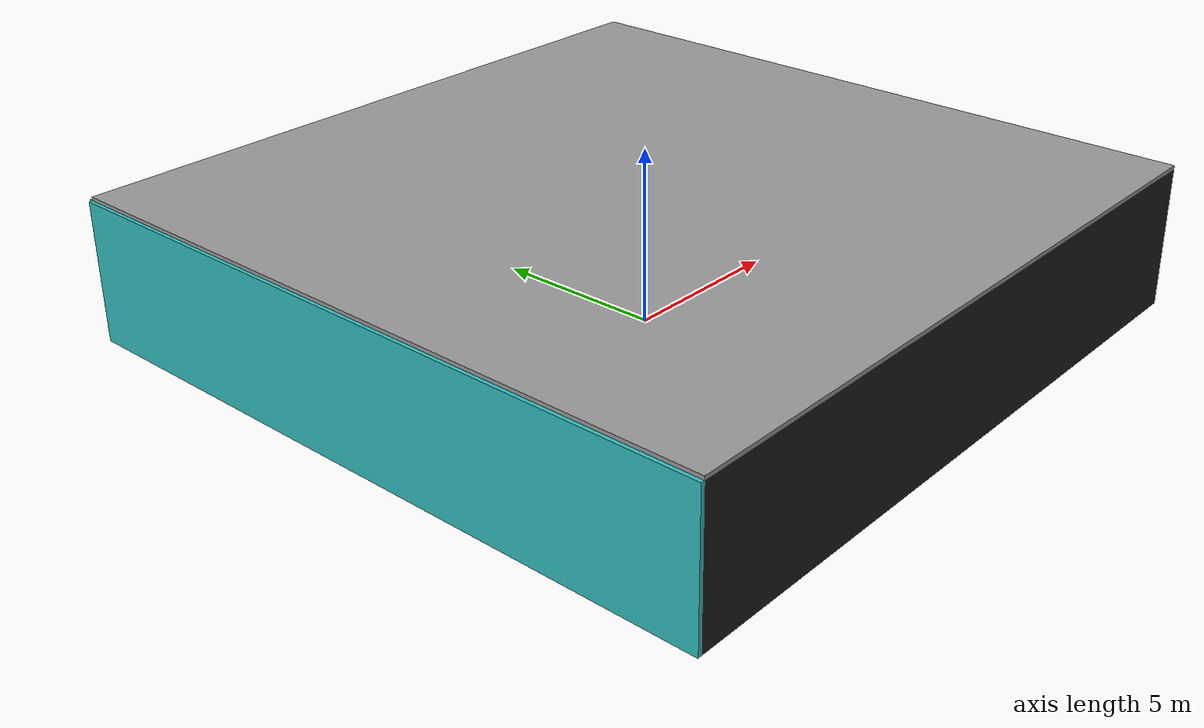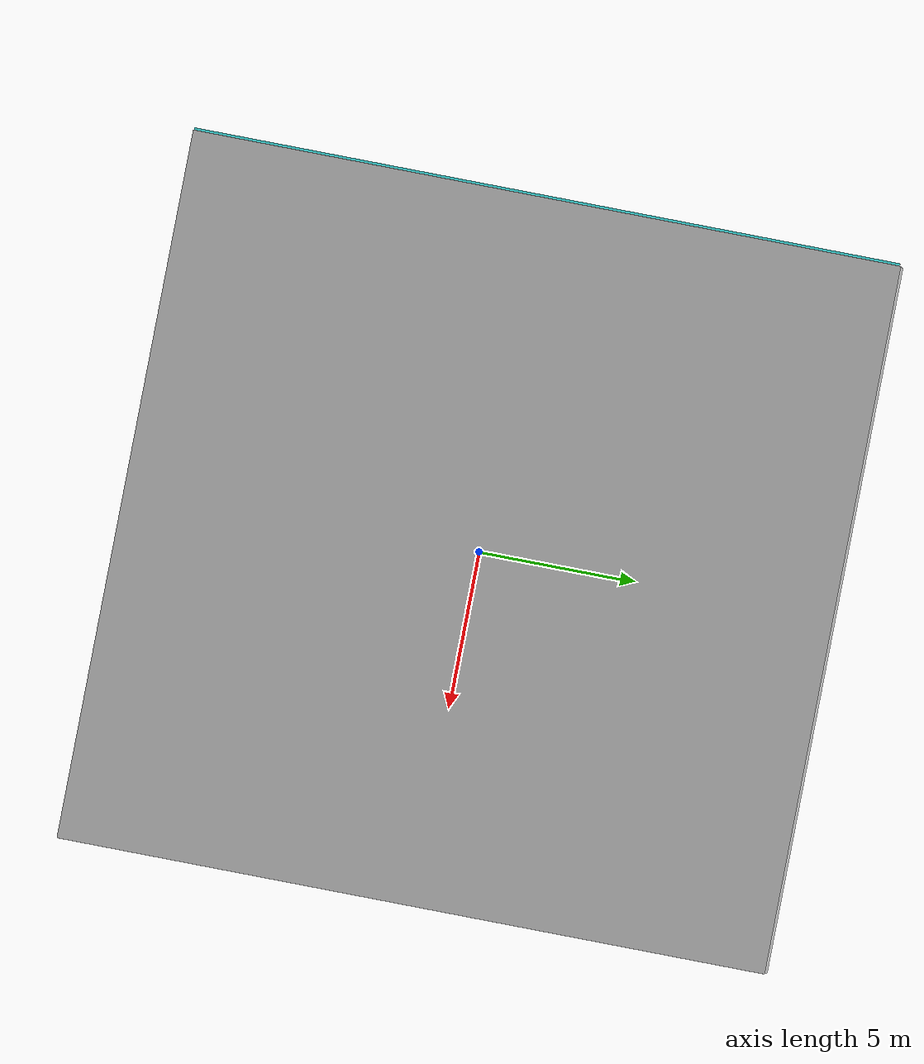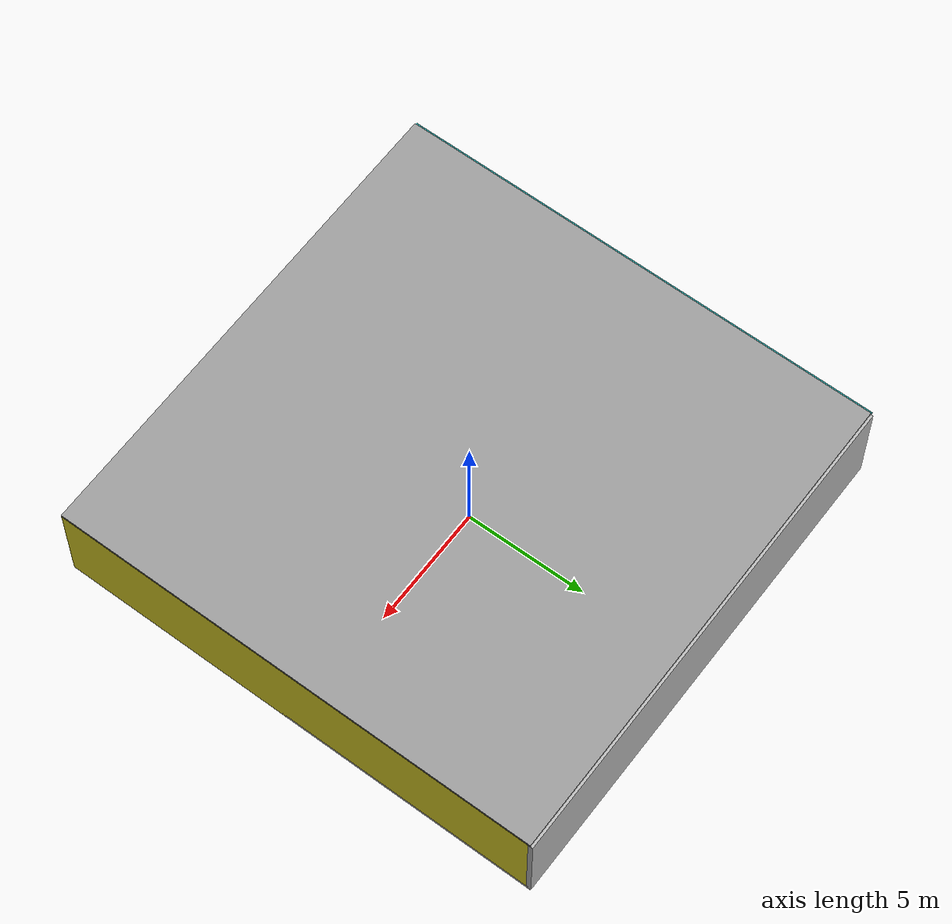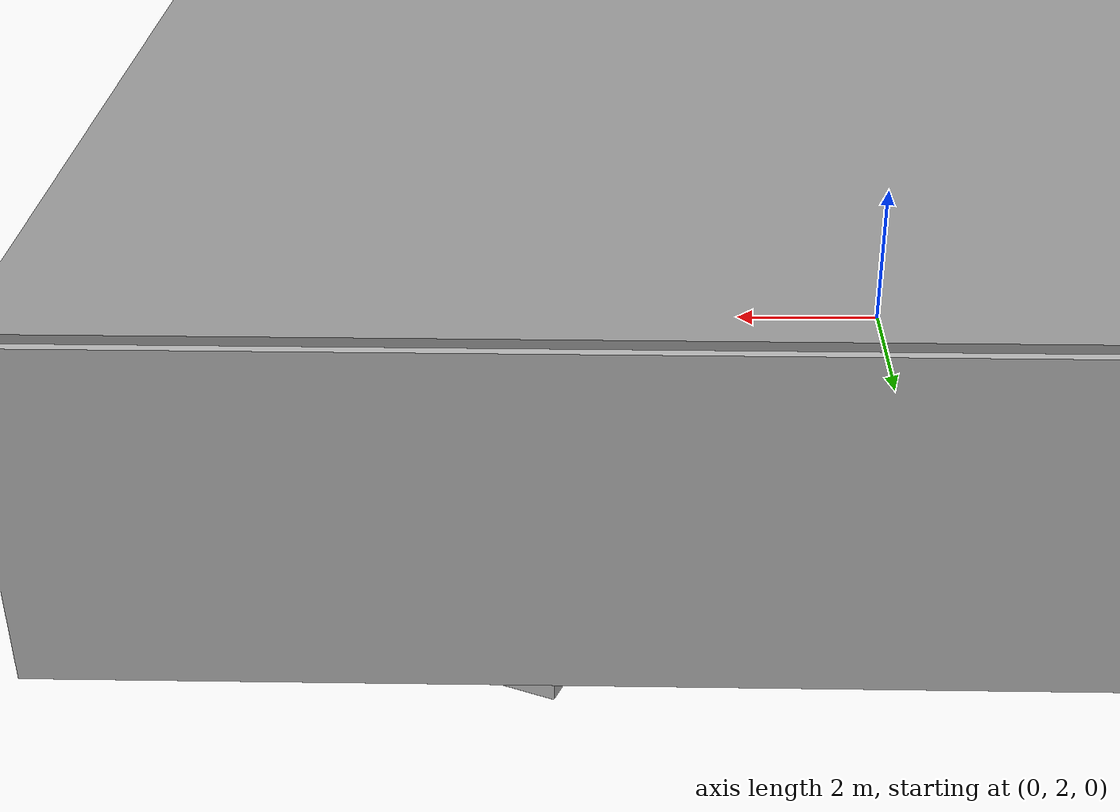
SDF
<sdf version="1.4">
 <world name="default">
  <physics type="ode">
   <max_step_size>0.001</max_step_size>
   <real_time_factor>1</real_time_factor>
   <real_time_update_rate>1000</real_time_update_rate>
   <gravity>0 0 -9.8</gravity>
  </physics>
  <scene><ambient>0.4 0.4 0.4 1</ambient><background>0.7 0.7 0.7 1</background><shadows>1</shadows></scene>
  <model name="Surrounding">
   <static>1</static>
   <link name="Ceiling">
    <collision name="Ceiling_Collision"><geometry><box><size>20 20 0.1</size></box></geometry></collision>
    <visual name="Ceiling_Visual">
     <geometry><box><size>20 20 0.1</size></box></geometry>
     <material>
      <script><uri>file://media/materials/scripts/gazebo.material</uri><name>Gazebo/Grey</name></script>
     </material>
    </visual>
    <pose>0 0 4.05 0 0 0</pose>
   </link>
   <link name="Wall_South">
    <collision name="Wall_South_Collision">
     <geometry><box><size>20 0 4</size></box></geometry>
     <pose>0 0 2 0 -0 0</pose>
    </collision>
    <visual name="Wall_South_Visual">
     <pose>0 0 2 0 -0 0</pose>
     <geometry><box><size>20 0 4</size></box></geometry>
     <material>
      <script><uri>file://media/materials/scripts/gazebo.material</uri><name>Gazebo/Black</name></script>
     </material>
    </visual>
    <velocity_decay><linear>0</linear><angular>0</angular></velocity_decay>
    <pose>0 -10 0 0 -0 0</pose>
   </link>
   <link name="Wall_East">
    <collision name="Wall_21_Collision">
     <geometry><box><size>20 0 4</size></box></geometry>
     <pose>0 0 2 0 -0 0</pose>
    </collision>
    <visual name="Wall_21_Visual">
     <pose>0 0 2 0 -0 0</pose>
     <geometry><box><size>20 0 4</size></box></geometry>
     <material>
      <script><uri>file://media/materials/scripts/gazebo.material</uri><name>Gazebo/Yellow</name></script>
     </material>
    </visual>
    <velocity_decay><linear>0</linear><angular>0</angular></velocity_decay>
    <pose>10 0 0 0 -0 1.5708</pose>
   </link>
   <link name="Wall_North">
    <collision name="Wall_22_Collision">
     <geometry><box><size>20 0.2 4</size></box></geometry>
     <pose>0 0 2 0 -0 0</pose>
    </collision>
    <visual name="Wall_22_Visual">
     <pose>0 0 2 0 -0 0</pose>
     <geometry><box><size>20 0.2 4</size></box></geometry>
     <material>
      <script><uri>file://media/materials/scripts/gazebo.material</uri><name>Gazebo/PioneerBody</name></script>
     </material>
    </visual>
    <velocity_decay><linear>0</linear><angular>0</angular></velocity_decay>
    <pose>0 10 0 0 -0 0</pose>
   </link>
   <link name="Wall_West">
    <collision name="Wall_23_Collision">
     <geometry><box><size>20 0.2 4</size></box></geometry>
     <pose>0 0 2 0 -0 0</pose>
    </collision>
    <visual name="Wall_23_Visual">
     <pose>0 0 2 0 -0 0</pose>
     <geometry><box><size>20 0.2 4</size></box></geometry>
     <material>
      <script><uri>file://media/materials/scripts/gazebo.material</uri><name>Gazebo/Turquoise</name></script>
     </material>
    </visual>
    <velocity_decay><linear>0</linear><angular>0</angular></velocity_decay>
    <pose>-10 0 0 0 0 -1.5708</pose>
   </link>
   <link name="Ground_link">
    <collision name="collision">
     <pose>0 0 .05 0 -0 0</pose>
     <geometry><box><size>20 20 0.1</size></box></geometry>
    </collision>
    <visual name="visual">
     <pose>0 0 .05 0 -0 0</pose>
     <geometry><box><size>20 20 0.1</size></box></geometry>
     <material>
      <script><uri>file://media/materials/scripts/gazebo.material</uri><name>Gazebo/Black</name></script>
     </material>
    </visual>
   </link>
   <static>1</static>
  </model>
  <spherical_coordinates>
   <surface_model>EARTH_WGS84</surface_model>
   <latitude_deg>0</latitude_deg>
   <longitude_deg>0</longitude_deg>
   <elevation>0</elevation>
   <heading_deg>0</heading_deg>
  </spherical_coordinates>
  <light name="lightball_0" type="diffuse">
   <diffuse>0.8 0.8 0.8 1</diffuse>
   <specular>0.2 0.2 0.2 1</specular>
   <attenuation>
    <range>100</range>
    <constant>0.7</constant>
    <linear>0.01</linear>
    <quadratic>0.001</quadratic>
   </attenuation>
   <direction>-0.5 0.1 -0.9</direction>
   <pose>7.96095748436 -2.80450478073 3.68573774375 0 0 0</pose>
  </light>
  <light name="lightball_1" type="diffuse">
   <diffuse>0.8 0.8 0.8 1</diffuse>
   <specular>0.2 0.2 0.2 1</specular>
   <attenuation>
    <range>100</range>
    <constant>0.7</constant>
    <linear>0.01</linear>
    <quadratic>0.001</quadratic>
   </attenuation>
   <direction>-0.5 0.1 -0.9</direction>
   <pose>9.27765777981 0.0235340100145 3.15004856988 0 0 0</pose>
  </light>
  <light name="lightball_2" type="diffuse">
   <diffuse>0.8 0.8 0.8 1</diffuse>
   <specular>0.2 0.2 0.2 1</specular>
   <attenuation>
    <range>100</range>
    <constant>0.7</constant>
    <linear>0.01</linear>
    <quadratic>0.001</quadratic>
   </attenuation>
   <direction>-0.5 0.1 -0.9</direction>
   <pose>9.99393136466 -6.06380422025 1.90683390293 0 0 0</pose>
  </light>
  <light name="lightball_3" type="diffuse">
   <diffuse>0.8 0.8 0.8 1</diffuse>
   <specular>0.2 0.2 0.2 1</specular>
   <attenuation>
    <range>100</range>
    <constant>0.7</constant>
    <linear>0.01</linear>
    <quadratic>0.001</quadratic>
   </attenuation>
   <direction>-0.5 0.1 -0.9</direction>
   <pose>5.81221960539 4.34769834963 3.86315897893 0 0 0</pose>
  </light>
  <light name="lightball_4" type="diffuse">
   <diffuse>0.8 0.8 0.8 1</diffuse>
   <specular>0.2 0.2 0.2 1</specular>
   <attenuation>
    <range>100</range>
    <constant>0.7</constant>
    <linear>0.01</linear>
    <quadratic>0.001</quadratic>
   </attenuation>
   <direction>-0.5 0.1 -0.9</direction>
   <pose>6.95925082646 1.62097667674 2.75170384994 0 0 0</pose>
  </light>
  <light name="lightball_5" type="diffuse">
   <diffuse>0.8 0.8 0.8 1</diffuse>
   <specular>0.2 0.2 0.2 1</specular>
   <attenuation>
    <range>100</range>
    <constant>0.7</constant>
    <linear>0.01</linear>
    <quadratic>0.001</quadratic>
   </attenuation>
   <direction>-0.5 0.1 -0.9</direction>
   <pose>-0.684411158459 -7.25166527712 2.07506128119 0 0 0</pose>
  </light>
  <light name="lightball_6" type="diffuse">
   <diffuse>0.8 0.8 0.8 1</diffuse>
   <specular>0.2 0.2 0.2 1</specular>
   <attenuation>
    <range>100</range>
    <constant>0.7</constant>
    <linear>0.01</linear>
    <quadratic>0.001</quadratic>
   </attenuation>
   <direction>-0.5 0.1 -0.9</direction>
   <pose>-9.86968333835 -6.2893592695 2.88714889805 0 0 0</pose>
  </light>
  <light name="lightball_7" type="diffuse">
   <diffuse>0.8 0.8 0.8 1</diffuse>
   <specular>0.2 0.2 0.2 1</specular>
   <attenuation>
    <range>100</range>
    <constant>0.7</constant>
    <linear>0.01</linear>
    <quadratic>0.001</quadratic>
   </attenuation>
   <direction>-0.5 0.1 -0.9</direction>
   <pose>5.07875390914 6.78464188596 3.68325822324 0 0 0</pose>
  </light>
  <include><uri>model://cabinet</uri><pose>-7.65421176634 -1.19714444257 0 0 0 2.49578061505</pose></include>
  <include><uri>model://cabinet</uri><pose>-1.77572943953 7.01291197875 0 0 0 0.984024811496</pose></include>
  <include>
   <uri>model://textured_shapes</uri>
   <pose>4.0847232045 7.70112744885 0 0 0 2.76055691673</pose>
  </include>
  <include><uri>model://cabinet</uri><pose>7.87735644598 4.81075560188 0 0 0 2.48738141115</pose></include>
 </world>
</sdf>

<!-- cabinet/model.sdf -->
<sdf version="1.5">
  <model name="cabinet">
    <static>true</static>
    <link name="cabinet_bottom_plate">
      <inertial>
        <pose>0 0 -1 0 0 0</pose>
        <inertia>
          <ixx>2.050000</ixx>
          <ixy>0</ixy>
          <ixz>0</ixz>
          <iyy>2.050000</iyy>
          <iyz>0</iyz>
          <izz>2.050000</izz>
        </inertia>
        <mass>25.000000</mass>
      </inertial>
      <collision name="cabinet_bottom_plate_geom">
        <pose>0 0 0.010000 0 0 0</pose>
        <geometry>
          <box>
            <size>0.450000 0.450000 0.020000</size>
          </box>
        </geometry>
      </collision>
      <visual name="cabinet_bottom_plate_geom_visual">
        <pose>0 0 0.010000 0 0 0</pose>
        <geometry>
          <box>
            <size>0.450000 0.450000 0.020000</size>
          </box>
        </geometry>
        <material>
          <script>
            <uri>model://media/materials/scripts/gazebo.material</uri>
            <name>Gazebo/Wood</name>
          </script>
        </material>
      </visual>
      <collision name="cabinet_bottom_plate_geom_cabinet_back_plate">
        <pose>0.235000 0 0.510000 0 0 0</pose>
        <geometry>
          <box>
            <size>0.020000 0.450000 1.020000</size>
          </box>
        </geometry>
      </collision>
      <visual name="cabinet_bottom_plate_geom_cabinet_back_plate_visual">
        <pose>0.235000 0 0.510000 0 0 0</pose>
        <geometry>
          <box>
            <size>0.020000 0.450000 1.020000</size>
          </box>
        </geometry>
        <material>
          <script>
            <uri>model://media/materials/scripts/gazebo.material</uri>
            <name>Gazebo/Wood</name>
          </script>
        </material>
      </visual>
      <collision name="cabinet_bottom_plate_geom_cabinet_left_plate">
        <pose>0 0.235000 0.510000 0 0 0</pose>
        <geometry>
          <box>
            <size>0.450000 0.020000 1.020000</size>
          </box>
        </geometry>
      </collision>
      <visual name="cabinet_bottom_plate_geom_cabinet_left_plate_visual">
        <pose>0 0.235000 0.510000 0 0 0</pose>
        <geometry>
          <box>
            <size>0.450000 0.020000 1.020000</size>
          </box>
        </geometry>
        <material>
          <script>
            <uri>model://media/materials/scripts/gazebo.material</uri>
            <name>Gazebo/Wood</name>
          </script>
        </material>
      </visual>
      <collision name="cabinet_bottom_plate_geom_cabinet_middle_plate">
        <pose>0 0 0.510000 0 0 0</pose>
        <geometry>
          <box>
            <size>0.450000 0.450000 0.020000</size>
          </box>
        </geometry>
      </collision>
      <visual name="cabinet_bottom_plate_geom_cabinet_middle_plate_visual">
        <pose>0 0 0.510000 0 0 0</pose>
        <geometry>
          <box>
            <size>0.450000 0.450000 0.020000</size>
          </box>
        </geometry>
        <material>
          <script>
            <uri>model://media/materials/scripts/gazebo.material</uri>
            <name>Gazebo/Wood</name>
          </script>
        </material>
      </visual>
      <collision name="cabinet_bottom_plate_geom_cabinet_right_plate">
        <pose>0 -0.235000 0.510000 0 0 0</pose>
        <geometry>
          <box>
            <size>0.450000 0.020000 1.020000</size>
          </box>
        </geometry>
      </collision>
      <visual name="cabinet_bottom_plate_geom_cabinet_right_plate_visual">
        <pose>0 -0.235000 0.510000 0 0 0</pose>
        <geometry>
          <box>
            <size>0.450000 0.020000 1.020000</size>
          </box>
        </geometry>
        <material>
          <script>
            <uri>model://media/materials/scripts/gazebo.material</uri>
            <name>Gazebo/Wood</name>
          </script>
        </material>
      </visual>
      <collision name="cabinet_bottom_plate_geom_cabinet_top_plate">
        <pose>0 0 1.010000 0 0 0</pose>
        <geometry>
          <box>
            <size>0.450000 0.450000 0.020000</size>
          </box>
        </geometry>
      </collision>
      <visual name="cabinet_bottom_plate_geom_cabinet_top_plate_visual">
        <pose>0 0 1.010000 0 0 0</pose>
        <geometry>
          <box>
            <size>0.450000 0.450000 0.020000</size>
          </box>
        </geometry>
        <material>
          <script>
            <uri>model://media/materials/scripts/gazebo.material</uri>
            <name>Gazebo/Wood</name>
          </script>
        </material>
      </visual>
    </link>
  </model>
</sdf>

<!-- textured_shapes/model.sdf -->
<sdf version="1.6">
  <model name="textured_shapes">
    <pose>0 0 0.5 0 0 0</pose>
    <link name="box">
      <pose>0 -1.5 0 0 0 0</pose>
      <collision name="collision">
        <geometry>
          <box>
            <size>1 1 1</size>
          </box>
        </geometry>
      </collision>
      <visual name="visual">
        <geometry>
          <box>
            <size>1 1 1</size>
          </box>
        </geometry>
        <material>
          <script>
            <uri>model://../model_source/models/textured_shapes/materials/scripts</uri>
            <uri>model://../model_source/models/textured_shapes/materials/textures</uri>
            <name>TexturedShape/Squares</name>
          </script>
        </material>
      </visual>
    </link>
    <link name="sphere">
      <collision name="collision">
        <geometry>
          <sphere>
            <radius>0.5</radius>
          </sphere>
        </geometry>
      </collision>
      <visual name="visual">
        <geometry>
          <sphere>
            <radius>0.5</radius>
          </sphere>
        </geometry>
        <material>
          <script>
            <uri>model://../model_source/models/textured_shapes/materials/scripts</uri>
            <uri>model://../model_source/models/textured_shapes/materials/textures</uri>
            <name>TexturedShape/Squares</name>
          </script>
        </material>
      </visual>
    </link>
    <link name="cylinder">
      <pose>0 1.5 0 0 0 0</pose>
      <collision name="collision">
        <geometry>
          <cylinder>
            <radius>0.5</radius>
            <length>1</length>
          </cylinder>
        </geometry>
      </collision>
      <visual name="visual">
        <geometry>
          <cylinder>
            <radius>0.5</radius>
            <length>1</length>
          </cylinder>
        </geometry>
        <material>
          <script>
            <uri>model://../model_source/models/textured_shapes/materials/scripts</uri>
            <uri>model://../model_source/models/textured_shapes/materials/textures</uri>
            <name>TexturedShape/Squares</name>
          </script>
        </material>
      </visual>
    </link>
  </model>
</sdf>
